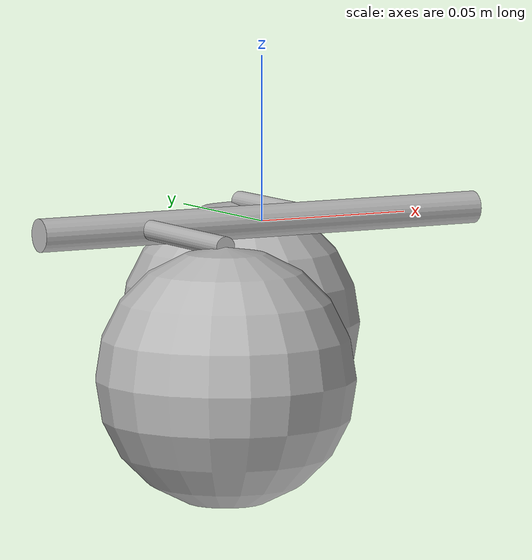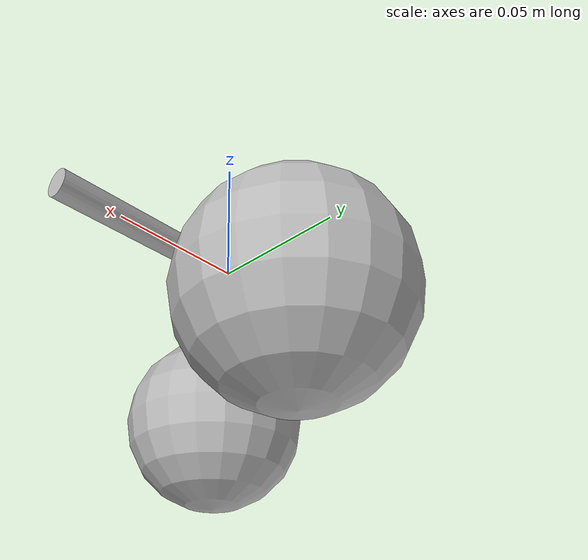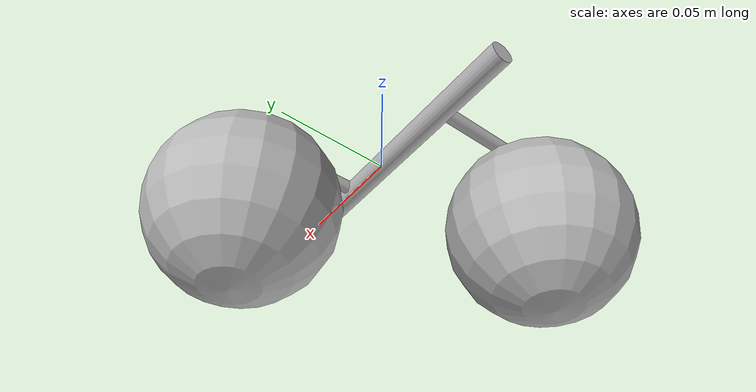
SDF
<?xml version='1.0'?>
<sdf version="1.4">
  <model name="truss">
    <static>false</static>
    <link name="peduncle">
      <inertial>
        <mass>0.01</mass>
        <inertia>
          <ixx>0.0001</ixx>
          <ixy>0.0</ixy>
          <ixz>0.0</ixz>
          <iyy>0.0001</iyy>
          <iyz>0.0</iyz>
          <izz>0.0001</izz>
        </inertia>
      </inertial>
      <pose>0 0 0 0 1.5708 0</pose>
      <collision name="collision">
        <geometry>
          <cylinder>
            <length>0.15</length>
            <radius>0.005</radius>
          </cylinder>
        </geometry>
      </collision>
      <visual name="visual">
        <geometry>
          <cylinder>
            <length>0.15</length>
            <radius>0.005</radius>
          </cylinder>
        </geometry>
        <material>
          <script>
            <uri>file://media/materials/scripts/custom.material</uri>
            <name>Custom/Peduncle</name>
          </script>
        </material>
      </visual>
    </link>

    <include>
      <name>pedicel1</name>
      <uri>file://models/pedicel</uri>
      <pose>0.02 0.025 0 0 0 1.5708</pose>
    </include>

    <joint name="pedicel1_joint" type="fixed">
      <child>pedicel1::link</child>
      <parent>peduncle</parent>
    </joint>

    <include>
      <name>tomato1</name>
      <uri>file://models/tomato</uri>
      <pose>0.02 0.05 0 0 0 0</pose>
    </include>

    <joint name="tomato1_joint" type="fixed">
      <child>tomato1::link</child>
      <parent>pedicel1::link</parent>
    </joint>

    <include>
      <name>pedicel2</name>
      <uri>file://models/pedicel</uri>
      <pose>-0.04 -0.025 0 0 0 1.5708</pose>
    </include>

    <!-- second tomato-->
    <joint name="pedicel2_joint" type="fixed">
      <child>pedicel2::link</child>
      <parent>peduncle</parent>
    </joint>

    <include>
      <name>tomato2</name>
      <uri>file://models/tomato</uri>
      <pose>-0.04 -0.05 0 0 0 0</pose>
    </include>

    <joint name="tomato2_joint" type="fixed">
      <child>tomato2::link</child>
      <parent>pedicel2::link</parent>
    </joint>
  </model>
</sdf>

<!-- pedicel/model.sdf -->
<sdf version="1.4">
  <model name="pedicel">
    <static>false</static>
    <link name="link">
      <inertial>
        <mass>0.01</mass>
        <inertia>
          <ixx>0.0001</ixx>
          <ixy>0.0</ixy>
          <ixz>0.0</ixz>
          <iyy>0.0001</iyy>
          <iyz>0.0</iyz>
          <izz>0.0001</izz>
        </inertia>
      </inertial>
      <pose>0 0 0 0 1.5708 0</pose>
      <collision name="collision">
        <geometry>
          <cylinder>
            <length>0.05</length>
            <radius>0.003</radius>
          </cylinder>
        </geometry>
      </collision>
      <visual name="visual">
        <geometry>
          <cylinder>
            <length>0.05</length>
            <radius>0.003</radius>
          </cylinder>
        </geometry>
        <material>
          <script>
            <uri>file://media/materials/scripts/custom.material</uri>
            <name>Custom/Peduncle</name>
          </script>
        </material>
      </visual>
    </link>
  </model>
</sdf>

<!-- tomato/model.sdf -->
<sdf version="1.4">
  <model name="tomato">
    <static>false</static>
    <link name="link">
      <inertial>
        <mass>0.01</mass>
        <inertia>
          <ixx>0.0001</ixx>
          <ixy>0.0</ixy>
          <ixz>0.0</ixz>
          <iyy>0.0001</iyy>
          <iyz>0.0</iyz>
          <izz>0.0001</izz>
        </inertia>
      </inertial>
      <pose>0 0 -0.038 0 0 0</pose>
      <collision name="collision">
        <geometry>
          <!-- We use a cylinder to stop it from rolling -->
          <cylinder>
            <length>0.076</length> <!-- 2*radius of sphere-->
            <radius>0.01</radius>
          </cylinder>
        </geometry>
      </collision>
      <visual name="visual">
        <geometry>
          <sphere>
            <radius>0.038</radius>
          </sphere>
        </geometry>
        <material>
          <script>
            <uri>file://media/materials/scripts/custom.material</uri>
            <name>Custom/Tomato</name>
          </script>
        </material>
      </visual>
    </link>
  </model>
</sdf>
